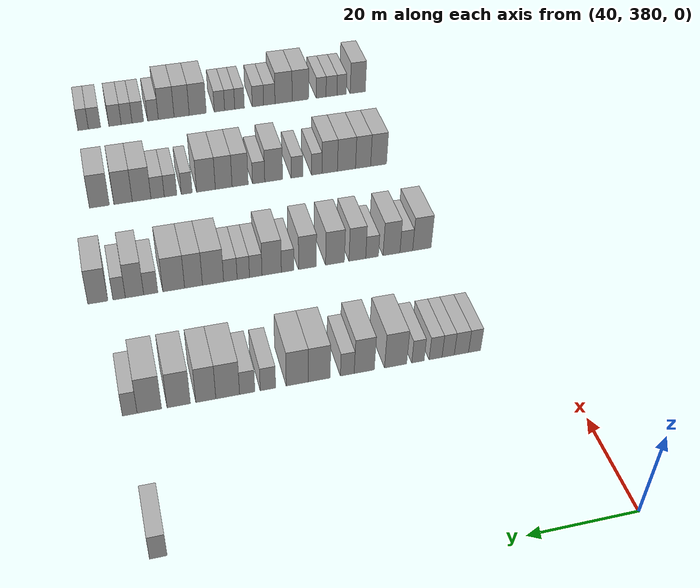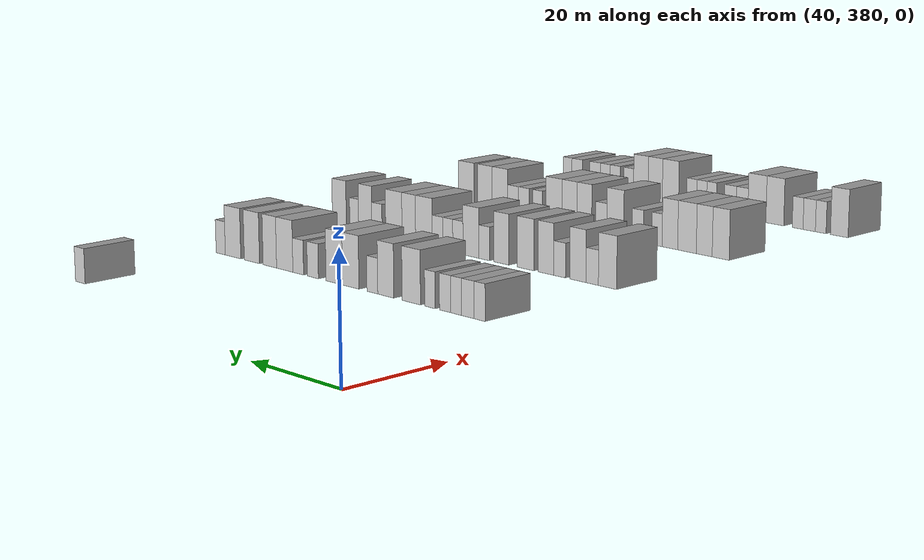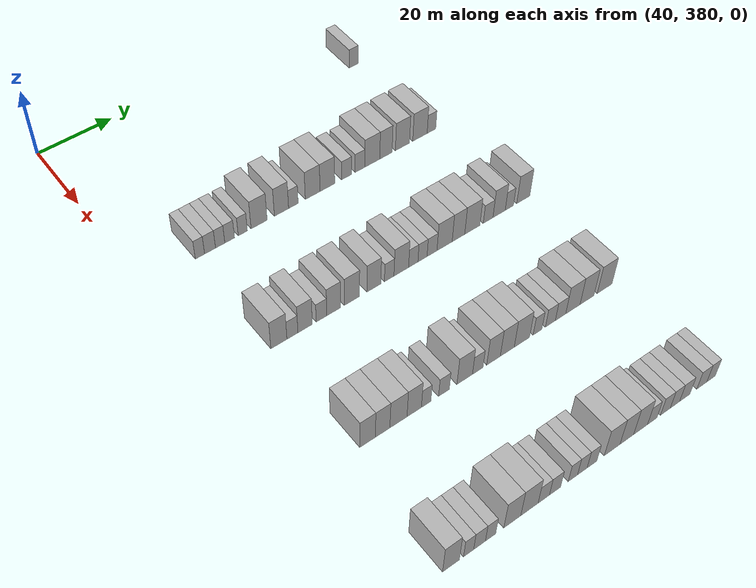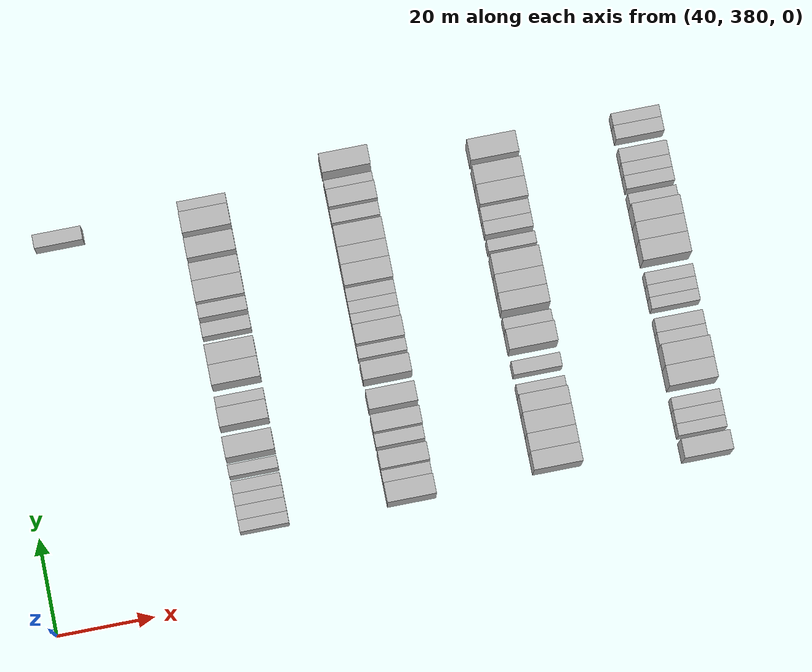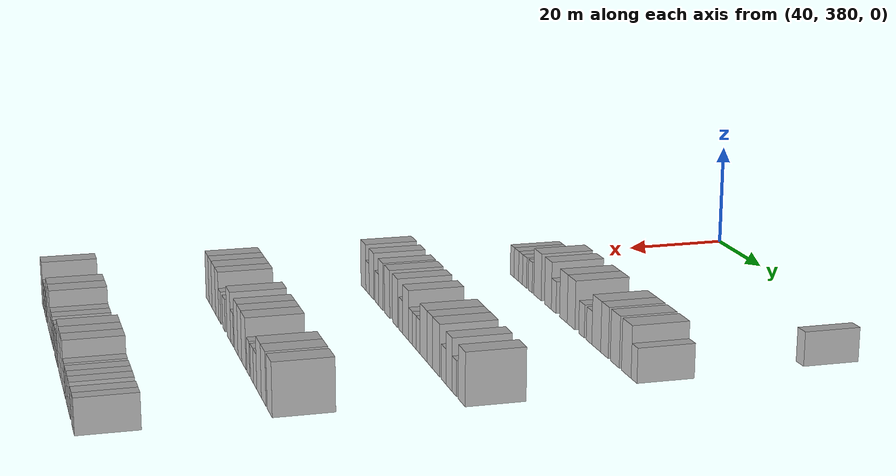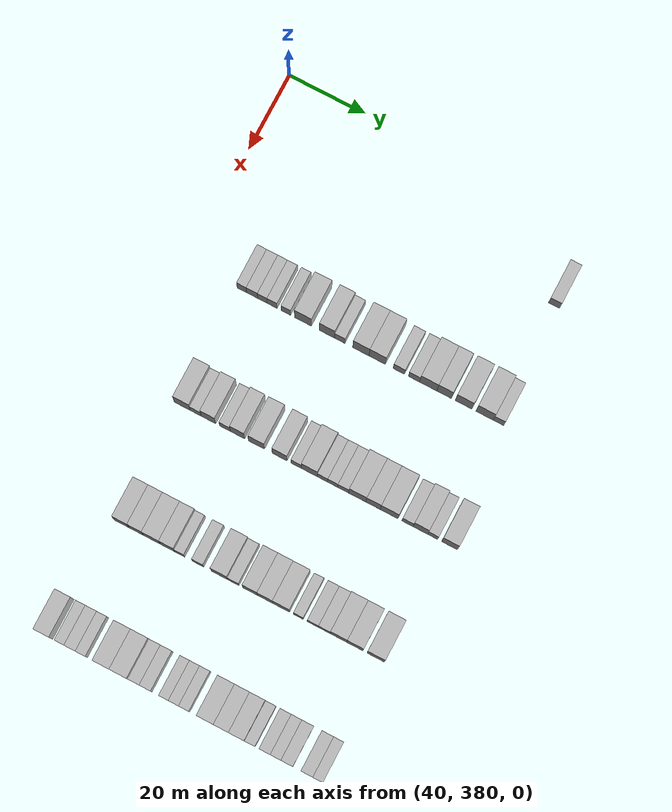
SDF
<sdf version="1.6">
 <world name="default">
  <model name="building_459">
   <static>1</static>
   <pose>55.0000 458.8344 0 0.000000 0.000000 0.000000</pose>
   <link name="link">
    <pose>0 0 3.00 0 0 0</pose>
    <collision name="collision"><geometry><box><size>10.0000 2.8377 6.0000</size></box></geometry></collision>
    <visual name="visual">
     <cast_shadows>0</cast_shadows>
     <geometry><box><size>10.0000 2.8377 6.0000</size></box></geometry>
     <material>
      <script>
       <uri>model://HANNAS_wall/materials/scripts</uri>
       <uri>model://HANNAS_wall/materials/textures</uri>
       <name>vrc/HANNAS_wall</name>
      </script>
     </material>
    </visual>
   </link>
  </model>
  <model name="building_679">
   <static>1</static>
   <pose>85.0000 394.0641 0 0.000000 0.000000 0.000000</pose>
   <link name="link">
    <pose>0 0 3.00 0 0 0</pose>
    <collision name="collision"><geometry><box><size>10.0000 2.4304 6.0000</size></box></geometry></collision>
    <visual name="visual">
     <cast_shadows>0</cast_shadows>
     <geometry><box><size>10.0000 2.4304 6.0000</size></box></geometry>
     <material>
      <script>
       <uri>model://HANNAS_wall/materials/scripts</uri>
       <uri>model://HANNAS_wall/materials/textures</uri>
       <name>vrc/HANNAS_wall</name>
      </script>
     </material>
    </visual>
   </link>
  </model>
  <model name="building_680">
   <static>1</static>
   <pose>85.0000 396.7114 0 0.000000 0.000000 0.000000</pose>
   <link name="link">
    <pose>0 0 3.00 0 0 0</pose>
    <collision name="collision"><geometry><box><size>10.0000 2.8643 6.0000</size></box></geometry></collision>
    <visual name="visual">
     <cast_shadows>0</cast_shadows>
     <geometry><box><size>10.0000 2.8643 6.0000</size></box></geometry>
     <material>
      <script>
       <uri>model://HANNAS_wall/materials/scripts</uri>
       <uri>model://HANNAS_wall/materials/textures</uri>
       <name>vrc/HANNAS_wall</name>
      </script>
     </material>
    </visual>
   </link>
  </model>
  <model name="building_681">
   <static>1</static>
   <pose>85.0000 399.3752 0 0.000000 0.000000 0.000000</pose>
   <link name="link">
    <pose>0 0 3.00 0 0 0</pose>
    <collision name="collision"><geometry><box><size>10.0000 2.4634 6.0000</size></box></geometry></collision>
    <visual name="visual">
     <cast_shadows>0</cast_shadows>
     <geometry><box><size>10.0000 2.4634 6.0000</size></box></geometry>
     <material>
      <script>
       <uri>model://HANNAS_wall/materials/scripts</uri>
       <uri>model://HANNAS_wall/materials/textures</uri>
       <name>vrc/HANNAS_wall</name>
      </script>
     </material>
    </visual>
   </link>
  </model>
  <model name="building_682">
   <static>1</static>
   <pose>85.0000 401.8960 0 0.000000 0.000000 0.000000</pose>
   <link name="link">
    <pose>0 0 3.00 0 0 0</pose>
    <collision name="collision"><geometry><box><size>10.0000 2.5781 6.0000</size></box></geometry></collision>
    <visual name="visual">
     <cast_shadows>0</cast_shadows>
     <geometry><box><size>10.0000 2.5781 6.0000</size></box></geometry>
     <material>
      <script>
       <uri>model://HANNAS_wall/materials/scripts</uri>
       <uri>model://HANNAS_wall/materials/textures</uri>
       <name>vrc/HANNAS_wall</name>
      </script>
     </material>
    </visual>
   </link>
  </model>
  <model name="building_683">
   <static>1</static>
   <pose>85.0000 405.4128 0 0.000000 0.000000 0.000000</pose>
   <link name="link">
    <pose>0 0 3.00 0 0 0</pose>
    <collision name="collision"><geometry><box><size>10.0000 2.4557 6.0000</size></box></geometry></collision>
    <visual name="visual">
     <cast_shadows>0</cast_shadows>
     <geometry><box><size>10.0000 2.4557 6.0000</size></box></geometry>
     <material>
      <script>
       <uri>model://HANNAS_wall/materials/scripts</uri>
       <uri>model://HANNAS_wall/materials/textures</uri>
       <name>vrc/HANNAS_wall</name>
      </script>
     </material>
    </visual>
   </link>
  </model>
  <model name="building_684">
   <static>1</static>
   <pose>85.0000 409.8267 0 0.000000 0.000000 0.000000</pose>
   <link name="link">
    <pose>0 0 4.50 0 0 0</pose>
    <collision name="collision"><geometry><box><size>10.0000 4.3721 9.0000</size></box></geometry></collision>
    <visual name="visual">
     <cast_shadows>0</cast_shadows>
     <geometry><box><size>10.0000 4.3721 9.0000</size></box></geometry>
     <material>
      <script>
       <uri>model://HANNAS_wall/materials/scripts</uri>
       <uri>model://HANNAS_wall/materials/textures</uri>
       <name>vrc/HANNAS_wall</name>
      </script>
     </material>
    </visual>
   </link>
  </model>
  <model name="building_685">
   <static>1</static>
   <pose>85.0000 415.9788 0 0.000000 0.000000 0.000000</pose>
   <link name="link">
    <pose>0 0 4.50 0 0 0</pose>
    <collision name="collision"><geometry><box><size>10.0000 3.9320 9.0000</size></box></geometry></collision>
    <visual name="visual">
     <cast_shadows>0</cast_shadows>
     <geometry><box><size>10.0000 3.9320 9.0000</size></box></geometry>
     <material>
      <script>
       <uri>model://HANNAS_wall/materials/scripts</uri>
       <uri>model://HANNAS_wall/materials/textures</uri>
       <name>vrc/HANNAS_wall</name>
      </script>
     </material>
    </visual>
   </link>
  </model>
  <model name="building_686">
   <static>1</static>
   <pose>85.0000 419.2805 0 0.000000 0.000000 0.000000</pose>
   <link name="link">
    <pose>0 0 3.00 0 0 0</pose>
    <collision name="collision"><geometry><box><size>10.0000 2.6714 6.0000</size></box></geometry></collision>
    <visual name="visual">
     <cast_shadows>0</cast_shadows>
     <geometry><box><size>10.0000 2.6714 6.0000</size></box></geometry>
     <material>
      <script>
       <uri>model://HANNAS_wall/materials/scripts</uri>
       <uri>model://HANNAS_wall/materials/textures</uri>
       <name>vrc/HANNAS_wall</name>
      </script>
     </material>
    </visual>
   </link>
  </model>
  <model name="building_687">
   <static>1</static>
   <pose>85.0000 424.7098 0 0.000000 0.000000 0.000000</pose>
   <link name="link">
    <pose>0 0 4.50 0 0 0</pose>
    <collision name="collision"><geometry><box><size>10.0000 4.1873 9.0000</size></box></geometry></collision>
    <visual name="visual">
     <cast_shadows>0</cast_shadows>
     <geometry><box><size>10.0000 4.1873 9.0000</size></box></geometry>
     <material>
      <script>
       <uri>model://HANNAS_wall/materials/scripts</uri>
       <uri>model://HANNAS_wall/materials/textures</uri>
       <name>vrc/HANNAS_wall</name>
      </script>
     </material>
    </visual>
   </link>
  </model>
  <model name="building_688">
   <static>1</static>
   <pose>85.0000 428.9042 0 0.000000 0.000000 0.000000</pose>
   <link name="link">
    <pose>0 0 4.50 0 0 0</pose>
    <collision name="collision"><geometry><box><size>10.0000 4.2014 9.0000</size></box></geometry></collision>
    <visual name="visual">
     <cast_shadows>0</cast_shadows>
     <geometry><box><size>10.0000 4.2014 9.0000</size></box></geometry>
     <material>
      <script>
       <uri>model://HANNAS_wall/materials/scripts</uri>
       <uri>model://HANNAS_wall/materials/textures</uri>
       <name>vrc/HANNAS_wall</name>
      </script>
     </material>
    </visual>
   </link>
  </model>
  <model name="building_689">
   <static>1</static>
   <pose>85.0000 434.4613 0 0.000000 0.000000 0.000000</pose>
   <link name="link">
    <pose>0 0 3.00 0 0 0</pose>
    <collision name="collision"><geometry><box><size>10.0000 2.9129 6.0000</size></box></geometry></collision>
    <visual name="visual">
     <cast_shadows>0</cast_shadows>
     <geometry><box><size>10.0000 2.9129 6.0000</size></box></geometry>
     <material>
      <script>
       <uri>model://HANNAS_wall/materials/scripts</uri>
       <uri>model://HANNAS_wall/materials/textures</uri>
       <name>vrc/HANNAS_wall</name>
      </script>
     </material>
    </visual>
   </link>
  </model>
  <model name="building_690">
   <static>1</static>
   <pose>85.0000 438.3498 0 0.000000 0.000000 0.000000</pose>
   <link name="link">
    <pose>0 0 3.00 0 0 0</pose>
    <collision name="collision"><geometry><box><size>10.0000 2.8642 6.0000</size></box></geometry></collision>
    <visual name="visual">
     <cast_shadows>0</cast_shadows>
     <geometry><box><size>10.0000 2.8642 6.0000</size></box></geometry>
     <material>
      <script>
       <uri>model://HANNAS_wall/materials/scripts</uri>
       <uri>model://HANNAS_wall/materials/textures</uri>
       <name>vrc/HANNAS_wall</name>
      </script>
     </material>
    </visual>
   </link>
  </model>
  <model name="building_691">
   <static>1</static>
   <pose>85.0000 441.9945 0 0.000000 0.000000 0.000000</pose>
   <link name="link">
    <pose>0 0 4.50 0 0 0</pose>
    <collision name="collision"><geometry><box><size>10.0000 4.4252 9.0000</size></box></geometry></collision>
    <visual name="visual">
     <cast_shadows>0</cast_shadows>
     <geometry><box><size>10.0000 4.4252 9.0000</size></box></geometry>
     <material>
      <script>
       <uri>model://HANNAS_wall/materials/scripts</uri>
       <uri>model://HANNAS_wall/materials/textures</uri>
       <name>vrc/HANNAS_wall</name>
      </script>
     </material>
    </visual>
   </link>
  </model>
  <model name="building_692">
   <static>1</static>
   <pose>85.0000 446.0563 0 0.000000 0.000000 0.000000</pose>
   <link name="link">
    <pose>0 0 4.50 0 0 0</pose>
    <collision name="collision"><geometry><box><size>10.0000 3.6984 9.0000</size></box></geometry></collision>
    <visual name="visual">
     <cast_shadows>0</cast_shadows>
     <geometry><box><size>10.0000 3.6984 9.0000</size></box></geometry>
     <material>
      <script>
       <uri>model://HANNAS_wall/materials/scripts</uri>
       <uri>model://HANNAS_wall/materials/textures</uri>
       <name>vrc/HANNAS_wall</name>
      </script>
     </material>
    </visual>
   </link>
  </model>
  <model name="building_693">
   <static>1</static>
   <pose>85.0000 451.0415 0 0.000000 0.000000 0.000000</pose>
   <link name="link">
    <pose>0 0 4.50 0 0 0</pose>
    <collision name="collision"><geometry><box><size>10.0000 4.2721 9.0000</size></box></geometry></collision>
    <visual name="visual">
     <cast_shadows>0</cast_shadows>
     <geometry><box><size>10.0000 4.2721 9.0000</size></box></geometry>
     <material>
      <script>
       <uri>model://HANNAS_wall/materials/scripts</uri>
       <uri>model://HANNAS_wall/materials/textures</uri>
       <name>vrc/HANNAS_wall</name>
      </script>
     </material>
    </visual>
   </link>
  </model>
  <model name="building_694">
   <static>1</static>
   <pose>85.0000 456.3931 0 0.000000 0.000000 0.000000</pose>
   <link name="link">
    <pose>0 0 4.50 0 0 0</pose>
    <collision name="collision"><geometry><box><size>10.0000 4.4310 9.0000</size></box></geometry></collision>
    <visual name="visual">
     <cast_shadows>0</cast_shadows>
     <geometry><box><size>10.0000 4.4310 9.0000</size></box></geometry>
     <material>
      <script>
       <uri>model://HANNAS_wall/materials/scripts</uri>
       <uri>model://HANNAS_wall/materials/textures</uri>
       <name>vrc/HANNAS_wall</name>
      </script>
     </material>
    </visual>
   </link>
  </model>
  <model name="building_695">
   <static>1</static>
   <pose>85.0000 459.9425 0 0.000000 0.000000 0.000000</pose>
   <link name="link">
    <pose>0 0 3.00 0 0 0</pose>
    <collision name="collision"><geometry><box><size>10.0000 2.6679 6.0000</size></box></geometry></collision>
    <visual name="visual">
     <cast_shadows>0</cast_shadows>
     <geometry><box><size>10.0000 2.6679 6.0000</size></box></geometry>
     <material>
      <script>
       <uri>model://HANNAS_wall/materials/scripts</uri>
       <uri>model://HANNAS_wall/materials/textures</uri>
       <name>vrc/HANNAS_wall</name>
      </script>
     </material>
    </visual>
   </link>
  </model>
  <model name="building_903">
   <static>1</static>
   <pose>115.0000 394.6925 0 0.000000 0.000000 0.000000</pose>
   <link name="link">
    <pose>0 0 4.50 0 0 0</pose>
    <collision name="collision"><geometry><box><size>10.0000 4.0841 9.0000</size></box></geometry></collision>
    <visual name="visual">
     <cast_shadows>0</cast_shadows>
     <geometry><box><size>10.0000 4.0841 9.0000</size></box></geometry>
     <material>
      <script>
       <uri>model://HANNAS_wall/materials/scripts</uri>
       <uri>model://HANNAS_wall/materials/textures</uri>
       <name>vrc/HANNAS_wall</name>
      </script>
     </material>
    </visual>
   </link>
  </model>
  <model name="building_904">
   <static>1</static>
   <pose>115.0000 398.1429 0 0.000000 0.000000 0.000000</pose>
   <link name="link">
    <pose>0 0 3.00 0 0 0</pose>
    <collision name="collision"><geometry><box><size>10.0000 2.8167 6.0000</size></box></geometry></collision>
    <visual name="visual">
     <cast_shadows>0</cast_shadows>
     <geometry><box><size>10.0000 2.8167 6.0000</size></box></geometry>
     <material>
      <script>
       <uri>model://HANNAS_wall/materials/scripts</uri>
       <uri>model://HANNAS_wall/materials/textures</uri>
       <name>vrc/HANNAS_wall</name>
      </script>
     </material>
    </visual>
   </link>
  </model>
  <model name="building_905">
   <static>1</static>
   <pose>115.0000 401.4115 0 0.000000 0.000000 0.000000</pose>
   <link name="link">
    <pose>0 0 4.50 0 0 0</pose>
    <collision name="collision"><geometry><box><size>10.0000 3.7205 9.0000</size></box></geometry></collision>
    <visual name="visual">
     <cast_shadows>0</cast_shadows>
     <geometry><box><size>10.0000 3.7205 9.0000</size></box></geometry>
     <material>
      <script>
       <uri>model://HANNAS_wall/materials/scripts</uri>
       <uri>model://HANNAS_wall/materials/textures</uri>
       <name>vrc/HANNAS_wall</name>
      </script>
     </material>
    </visual>
   </link>
  </model>
  <model name="building_906">
   <static>1</static>
   <pose>115.0000 405.6638 0 0.000000 0.000000 0.000000</pose>
   <link name="link">
    <pose>0 0 3.00 0 0 0</pose>
    <collision name="collision"><geometry><box><size>10.0000 2.7841 6.0000</size></box></geometry></collision>
    <visual name="visual">
     <cast_shadows>0</cast_shadows>
     <geometry><box><size>10.0000 2.7841 6.0000</size></box></geometry>
     <material>
      <script>
       <uri>model://HANNAS_wall/materials/scripts</uri>
       <uri>model://HANNAS_wall/materials/textures</uri>
       <name>vrc/HANNAS_wall</name>
      </script>
     </material>
    </visual>
   </link>
  </model>
  <model name="building_907">
   <static>1</static>
   <pose>115.0000 408.8747 0 0.000000 0.000000 0.000000</pose>
   <link name="link">
    <pose>0 0 4.50 0 0 0</pose>
    <collision name="collision"><geometry><box><size>10.0000 3.6377 9.0000</size></box></geometry></collision>
    <visual name="visual">
     <cast_shadows>0</cast_shadows>
     <geometry><box><size>10.0000 3.6377 9.0000</size></box></geometry>
     <material>
      <script>
       <uri>model://HANNAS_wall/materials/scripts</uri>
       <uri>model://HANNAS_wall/materials/textures</uri>
       <name>vrc/HANNAS_wall</name>
      </script>
     </material>
    </visual>
   </link>
  </model>
  <model name="building_908">
   <static>1</static>
   <pose>115.0000 413.7236 0 0.000000 0.000000 0.000000</pose>
   <link name="link">
    <pose>0 0 4.50 0 0 0</pose>
    <collision name="collision"><geometry><box><size>10.0000 4.0600 9.0000</size></box></geometry></collision>
    <visual name="visual">
     <cast_shadows>0</cast_shadows>
     <geometry><box><size>10.0000 4.0600 9.0000</size></box></geometry>
     <material>
      <script>
       <uri>model://HANNAS_wall/materials/scripts</uri>
       <uri>model://HANNAS_wall/materials/textures</uri>
       <name>vrc/HANNAS_wall</name>
      </script>
     </material>
    </visual>
   </link>
  </model>
  <model name="building_909">
   <static>1</static>
   <pose>115.0000 419.6513 0 0.000000 0.000000 0.000000</pose>
   <link name="link">
    <pose>0 0 4.50 0 0 0</pose>
    <collision name="collision"><geometry><box><size>10.0000 3.7955 9.0000</size></box></geometry></collision>
    <visual name="visual">
     <cast_shadows>0</cast_shadows>
     <geometry><box><size>10.0000 3.7955 9.0000</size></box></geometry>
     <material>
      <script>
       <uri>model://HANNAS_wall/materials/scripts</uri>
       <uri>model://HANNAS_wall/materials/textures</uri>
       <name>vrc/HANNAS_wall</name>
      </script>
     </material>
    </visual>
   </link>
  </model>
  <model name="building_910">
   <static>1</static>
   <pose>115.0000 423.8630 0 0.000000 0.000000 0.000000</pose>
   <link name="link">
    <pose>0 0 3.00 0 0 0</pose>
    <collision name="collision"><geometry><box><size>10.0000 2.6278 6.0000</size></box></geometry></collision>
    <visual name="visual">
     <cast_shadows>0</cast_shadows>
     <geometry><box><size>10.0000 2.6278 6.0000</size></box></geometry>
     <material>
      <script>
       <uri>model://HANNAS_wall/materials/scripts</uri>
       <uri>model://HANNAS_wall/materials/textures</uri>
       <name>vrc/HANNAS_wall</name>
      </script>
     </material>
    </visual>
   </link>
  </model>
  <model name="building_911">
   <static>1</static>
   <pose>115.0000 427.2157 0 0.000000 0.000000 0.000000</pose>
   <link name="link">
    <pose>0 0 4.50 0 0 0</pose>
    <collision name="collision"><geometry><box><size>10.0000 4.0777 9.0000</size></box></geometry></collision>
    <visual name="visual">
     <cast_shadows>0</cast_shadows>
     <geometry><box><size>10.0000 4.0777 9.0000</size></box></geometry>
     <material>
      <script>
       <uri>model://HANNAS_wall/materials/scripts</uri>
       <uri>model://HANNAS_wall/materials/textures</uri>
       <name>vrc/HANNAS_wall</name>
      </script>
     </material>
    </visual>
   </link>
  </model>
  <model name="building_912">
   <static>1</static>
   <pose>115.0000 430.5690 0 0.000000 0.000000 0.000000</pose>
   <link name="link">
    <pose>0 0 3.00 0 0 0</pose>
    <collision name="collision"><geometry><box><size>10.0000 2.6288 6.0000</size></box></geometry></collision>
    <visual name="visual">
     <cast_shadows>0</cast_shadows>
     <geometry><box><size>10.0000 2.6288 6.0000</size></box></geometry>
     <material>
      <script>
       <uri>model://HANNAS_wall/materials/scripts</uri>
       <uri>model://HANNAS_wall/materials/textures</uri>
       <name>vrc/HANNAS_wall</name>
      </script>
     </material>
    </visual>
   </link>
  </model>
  <model name="building_913">
   <static>1</static>
   <pose>115.0000 433.1755 0 0.000000 0.000000 0.000000</pose>
   <link name="link">
    <pose>0 0 3.00 0 0 0</pose>
    <collision name="collision"><geometry><box><size>10.0000 2.5843 6.0000</size></box></geometry></collision>
    <visual name="visual">
     <cast_shadows>0</cast_shadows>
     <geometry><box><size>10.0000 2.5843 6.0000</size></box></geometry>
     <material>
      <script>
       <uri>model://HANNAS_wall/materials/scripts</uri>
       <uri>model://HANNAS_wall/materials/textures</uri>
       <name>vrc/HANNAS_wall</name>
      </script>
     </material>
    </visual>
   </link>
  </model>
  <model name="building_914">
   <static>1</static>
   <pose>115.0000 435.8735 0 0.000000 0.000000 0.000000</pose>
   <link name="link">
    <pose>0 0 3.00 0 0 0</pose>
    <collision name="collision"><geometry><box><size>10.0000 2.8116 6.0000</size></box></geometry></collision>
    <visual name="visual">
     <cast_shadows>0</cast_shadows>
     <geometry><box><size>10.0000 2.8116 6.0000</size></box></geometry>
     <material>
      <script>
       <uri>model://HANNAS_wall/materials/scripts</uri>
       <uri>model://HANNAS_wall/materials/textures</uri>
       <name>vrc/HANNAS_wall</name>
      </script>
     </material>
    </visual>
   </link>
  </model>
  <model name="building_915">
   <static>1</static>
   <pose>115.0000 439.4709 0 0.000000 0.000000 0.000000</pose>
   <link name="link">
    <pose>0 0 4.50 0 0 0</pose>
    <collision name="collision"><geometry><box><size>10.0000 4.3833 9.0000</size></box></geometry></collision>
    <visual name="visual">
     <cast_shadows>0</cast_shadows>
     <geometry><box><size>10.0000 4.3833 9.0000</size></box></geometry>
     <material>
      <script>
       <uri>model://HANNAS_wall/materials/scripts</uri>
       <uri>model://HANNAS_wall/materials/textures</uri>
       <name>vrc/HANNAS_wall</name>
      </script>
     </material>
    </visual>
   </link>
  </model>
  <model name="building_916">
   <static>1</static>
   <pose>115.0000 443.4964 0 0.000000 0.000000 0.000000</pose>
   <link name="link">
    <pose>0 0 4.50 0 0 0</pose>
    <collision name="collision"><geometry><box><size>10.0000 3.6677 9.0000</size></box></geometry></collision>
    <visual name="visual">
     <cast_shadows>0</cast_shadows>
     <geometry><box><size>10.0000 3.6677 9.0000</size></box></geometry>
     <material>
      <script>
       <uri>model://HANNAS_wall/materials/scripts</uri>
       <uri>model://HANNAS_wall/materials/textures</uri>
       <name>vrc/HANNAS_wall</name>
      </script>
     </material>
    </visual>
   </link>
  </model>
  <model name="building_917">
   <static>1</static>
   <pose>115.0000 447.5612 0 0.000000 0.000000 0.000000</pose>
   <link name="link">
    <pose>0 0 4.50 0 0 0</pose>
    <collision name="collision"><geometry><box><size>10.0000 4.4619 9.0000</size></box></geometry></collision>
    <visual name="visual">
     <cast_shadows>0</cast_shadows>
     <geometry><box><size>10.0000 4.4619 9.0000</size></box></geometry>
     <material>
      <script>
       <uri>model://HANNAS_wall/materials/scripts</uri>
       <uri>model://HANNAS_wall/materials/textures</uri>
       <name>vrc/HANNAS_wall</name>
      </script>
     </material>
    </visual>
   </link>
  </model>
  <model name="building_918">
   <static>1</static>
   <pose>115.0000 452.2348 0 0.000000 0.000000 0.000000</pose>
   <link name="link">
    <pose>0 0 3.00 0 0 0</pose>
    <collision name="collision"><geometry><box><size>10.0000 2.8852 6.0000</size></box></geometry></collision>
    <visual name="visual">
     <cast_shadows>0</cast_shadows>
     <geometry><box><size>10.0000 2.8852 6.0000</size></box></geometry>
     <material>
      <script>
       <uri>model://HANNAS_wall/materials/scripts</uri>
       <uri>model://HANNAS_wall/materials/textures</uri>
       <name>vrc/HANNAS_wall</name>
      </script>
     </material>
    </visual>
   </link>
  </model>
  <model name="building_919">
   <static>1</static>
   <pose>115.0000 455.5239 0 0.000000 0.000000 0.000000</pose>
   <link name="link">
    <pose>0 0 4.50 0 0 0</pose>
    <collision name="collision"><geometry><box><size>10.0000 3.6930 9.0000</size></box></geometry></collision>
    <visual name="visual">
     <cast_shadows>0</cast_shadows>
     <geometry><box><size>10.0000 3.6930 9.0000</size></box></geometry>
     <material>
      <script>
       <uri>model://HANNAS_wall/materials/scripts</uri>
       <uri>model://HANNAS_wall/materials/textures</uri>
       <name>vrc/HANNAS_wall</name>
      </script>
     </material>
    </visual>
   </link>
  </model>
  <model name="building_920">
   <static>1</static>
   <pose>115.0000 458.6252 0 0.000000 0.000000 0.000000</pose>
   <link name="link">
    <pose>0 0 3.00 0 0 0</pose>
    <collision name="collision"><geometry><box><size>10.0000 2.5096 6.0000</size></box></geometry></collision>
    <visual name="visual">
     <cast_shadows>0</cast_shadows>
     <geometry><box><size>10.0000 2.5096 6.0000</size></box></geometry>
     <material>
      <script>
       <uri>model://HANNAS_wall/materials/scripts</uri>
       <uri>model://HANNAS_wall/materials/textures</uri>
       <name>vrc/HANNAS_wall</name>
      </script>
     </material>
    </visual>
   </link>
  </model>
  <model name="building_921">
   <static>1</static>
   <pose>115.0000 462.8836 0 0.000000 0.000000 0.000000</pose>
   <link name="link">
    <pose>0 0 4.50 0 0 0</pose>
    <collision name="collision"><geometry><box><size>10.0000 4.0072 9.0000</size></box></geometry></collision>
    <visual name="visual">
     <cast_shadows>0</cast_shadows>
     <geometry><box><size>10.0000 4.0072 9.0000</size></box></geometry>
     <material>
      <script>
       <uri>model://HANNAS_wall/materials/scripts</uri>
       <uri>model://HANNAS_wall/materials/textures</uri>
       <name>vrc/HANNAS_wall</name>
      </script>
     </material>
    </visual>
   </link>
  </model>
  <model name="building_1141">
   <static>1</static>
   <pose>145.0000 395.2966 0 0.000000 0.000000 0.000000</pose>
   <link name="link">
    <pose>0 0 4.50 0 0 0</pose>
    <collision name="collision"><geometry><box><size>10.0000 3.8424 9.0000</size></box></geometry></collision>
    <visual name="visual">
     <cast_shadows>0</cast_shadows>
     <geometry><box><size>10.0000 3.8424 9.0000</size></box></geometry>
     <material>
      <script>
       <uri>model://HANNAS_wall/materials/scripts</uri>
       <uri>model://HANNAS_wall/materials/textures</uri>
       <name>vrc/HANNAS_wall</name>
      </script>
     </material>
    </visual>
   </link>
  </model>
  <model name="building_1142">
   <static>1</static>
   <pose>145.0000 399.0387 0 0.000000 0.000000 0.000000</pose>
   <link name="link">
    <pose>0 0 4.50 0 0 0</pose>
    <collision name="collision"><geometry><box><size>10.0000 3.6418 9.0000</size></box></geometry></collision>
    <visual name="visual">
     <cast_shadows>0</cast_shadows>
     <geometry><box><size>10.0000 3.6418 9.0000</size></box></geometry>
     <material>
      <script>
       <uri>model://HANNAS_wall/materials/scripts</uri>
       <uri>model://HANNAS_wall/materials/textures</uri>
       <name>vrc/HANNAS_wall</name>
      </script>
     </material>
    </visual>
   </link>
  </model>
  <model name="building_1143">
   <static>1</static>
   <pose>145.0000 403.0276 0 0.000000 0.000000 0.000000</pose>
   <link name="link">
    <pose>0 0 4.50 0 0 0</pose>
    <collision name="collision"><geometry><box><size>10.0000 4.3361 9.0000</size></box></geometry></collision>
    <visual name="visual">
     <cast_shadows>0</cast_shadows>
     <geometry><box><size>10.0000 4.3361 9.0000</size></box></geometry>
     <material>
      <script>
       <uri>model://HANNAS_wall/materials/scripts</uri>
       <uri>model://HANNAS_wall/materials/textures</uri>
       <name>vrc/HANNAS_wall</name>
      </script>
     </material>
    </visual>
   </link>
  </model>
  <model name="building_1144">
   <static>1</static>
   <pose>145.0000 407.0370 0 0.000000 0.000000 0.000000</pose>
   <link name="link">
    <pose>0 0 4.50 0 0 0</pose>
    <collision name="collision"><geometry><box><size>10.0000 3.6827 9.0000</size></box></geometry></collision>
    <visual name="visual">
     <cast_shadows>0</cast_shadows>
     <geometry><box><size>10.0000 3.6827 9.0000</size></box></geometry>
     <material>
      <script>
       <uri>model://HANNAS_wall/materials/scripts</uri>
       <uri>model://HANNAS_wall/materials/textures</uri>
       <name>vrc/HANNAS_wall</name>
      </script>
     </material>
    </visual>
   </link>
  </model>
  <model name="building_1145">
   <static>1</static>
   <pose>145.0000 410.1045 0 0.000000 0.000000 0.000000</pose>
   <link name="link">
    <pose>0 0 3.00 0 0 0</pose>
    <collision name="collision"><geometry><box><size>10.0000 2.4523 6.0000</size></box></geometry></collision>
    <visual name="visual">
     <cast_shadows>0</cast_shadows>
     <geometry><box><size>10.0000 2.4523 6.0000</size></box></geometry>
     <material>
      <script>
       <uri>model://HANNAS_wall/materials/scripts</uri>
       <uri>model://HANNAS_wall/materials/textures</uri>
       <name>vrc/HANNAS_wall</name>
      </script>
     </material>
    </visual>
   </link>
  </model>
  <model name="building_1146">
   <static>1</static>
   <pose>145.0000 414.7430 0 0.000000 0.000000 0.000000</pose>
   <link name="link">
    <pose>0 0 3.00 0 0 0</pose>
    <collision name="collision"><geometry><box><size>10.0000 2.8245 6.0000</size></box></geometry></collision>
    <visual name="visual">
     <cast_shadows>0</cast_shadows>
     <geometry><box><size>10.0000 2.8245 6.0000</size></box></geometry>
     <material>
      <script>
       <uri>model://HANNAS_wall/materials/scripts</uri>
       <uri>model://HANNAS_wall/materials/textures</uri>
       <name>vrc/HANNAS_wall</name>
      </script>
     </material>
    </visual>
   </link>
  </model>
  <model name="building_1147">
   <static>1</static>
   <pose>145.0000 420.2308 0 0.000000 0.000000 0.000000</pose>
   <link name="link">
    <pose>0 0 4.50 0 0 0</pose>
    <collision name="collision"><geometry><box><size>10.0000 4.1511 9.0000</size></box></geometry></collision>
    <visual name="visual">
     <cast_shadows>0</cast_shadows>
     <geometry><box><size>10.0000 4.1511 9.0000</size></box></geometry>
     <material>
      <script>
       <uri>model://HANNAS_wall/materials/scripts</uri>
       <uri>model://HANNAS_wall/materials/textures</uri>
       <name>vrc/HANNAS_wall</name>
      </script>
     </material>
    </visual>
   </link>
  </model>
  <model name="building_1148">
   <static>1</static>
   <pose>145.0000 423.7265 0 0.000000 0.000000 0.000000</pose>
   <link name="link">
    <pose>0 0 3.00 0 0 0</pose>
    <collision name="collision"><geometry><box><size>10.0000 2.8404 6.0000</size></box></geometry></collision>
    <visual name="visual">
     <cast_shadows>0</cast_shadows>
     <geometry><box><size>10.0000 2.8404 6.0000</size></box></geometry>
     <material>
      <script>
       <uri>model://HANNAS_wall/materials/scripts</uri>
       <uri>model://HANNAS_wall/materials/textures</uri>
       <name>vrc/HANNAS_wall</name>
      </script>
     </material>
    </visual>
   </link>
  </model>
  <model name="building_1149">
   <static>1</static>
   <pose>145.0000 428.0050 0 0.000000 0.000000 0.000000</pose>
   <link name="link">
    <pose>0 0 4.50 0 0 0</pose>
    <collision name="collision"><geometry><box><size>10.0000 3.7166 9.0000</size></box></geometry></collision>
    <visual name="visual">
     <cast_shadows>0</cast_shadows>
     <geometry><box><size>10.0000 3.7166 9.0000</size></box></geometry>
     <material>
      <script>
       <uri>model://HANNAS_wall/materials/scripts</uri>
       <uri>model://HANNAS_wall/materials/textures</uri>
       <name>vrc/HANNAS_wall</name>
      </script>
     </material>
    </visual>
   </link>
  </model>
  <model name="building_1150">
   <static>1</static>
   <pose>145.0000 431.7863 0 0.000000 0.000000 0.000000</pose>
   <link name="link">
    <pose>0 0 4.50 0 0 0</pose>
    <collision name="collision"><geometry><box><size>10.0000 3.8460 9.0000</size></box></geometry></collision>
    <visual name="visual">
     <cast_shadows>0</cast_shadows>
     <geometry><box><size>10.0000 3.8460 9.0000</size></box></geometry>
     <material>
      <script>
       <uri>model://HANNAS_wall/materials/scripts</uri>
       <uri>model://HANNAS_wall/materials/textures</uri>
       <name>vrc/HANNAS_wall</name>
      </script>
     </material>
    </visual>
   </link>
  </model>
  <model name="building_1151">
   <static>1</static>
   <pose>145.0000 435.8463 0 0.000000 0.000000 0.000000</pose>
   <link name="link">
    <pose>0 0 4.50 0 0 0</pose>
    <collision name="collision"><geometry><box><size>10.0000 4.2741 9.0000</size></box></geometry></collision>
    <visual name="visual">
     <cast_shadows>0</cast_shadows>
     <geometry><box><size>10.0000 4.2741 9.0000</size></box></geometry>
     <material>
      <script>
       <uri>model://HANNAS_wall/materials/scripts</uri>
       <uri>model://HANNAS_wall/materials/textures</uri>
       <name>vrc/HANNAS_wall</name>
      </script>
     </material>
    </visual>
   </link>
  </model>
  <model name="building_1152">
   <static>1</static>
   <pose>145.0000 440.2235 0 0.000000 0.000000 0.000000</pose>
   <link name="link">
    <pose>0 0 3.00 0 0 0</pose>
    <collision name="collision"><geometry><box><size>10.0000 2.4802 6.0000</size></box></geometry></collision>
    <visual name="visual">
     <cast_shadows>0</cast_shadows>
     <geometry><box><size>10.0000 2.4802 6.0000</size></box></geometry>
     <material>
      <script>
       <uri>model://HANNAS_wall/materials/scripts</uri>
       <uri>model://HANNAS_wall/materials/textures</uri>
       <name>vrc/HANNAS_wall</name>
      </script>
     </material>
    </visual>
   </link>
  </model>
  <model name="building_1153">
   <static>1</static>
   <pose>145.0000 443.8809 0 0.000000 0.000000 0.000000</pose>
   <link name="link">
    <pose>0 0 3.00 0 0 0</pose>
    <collision name="collision"><geometry><box><size>10.0000 2.8347 6.0000</size></box></geometry></collision>
    <visual name="visual">
     <cast_shadows>0</cast_shadows>
     <geometry><box><size>10.0000 2.8347 6.0000</size></box></geometry>
     <material>
      <script>
       <uri>model://HANNAS_wall/materials/scripts</uri>
       <uri>model://HANNAS_wall/materials/textures</uri>
       <name>vrc/HANNAS_wall</name>
      </script>
     </material>
    </visual>
   </link>
  </model>
  <model name="building_1154">
   <static>1</static>
   <pose>145.0000 446.7941 0 0.000000 0.000000 0.000000</pose>
   <link name="link">
    <pose>0 0 3.00 0 0 0</pose>
    <collision name="collision"><geometry><box><size>10.0000 2.9915 6.0000</size></box></geometry></collision>
    <visual name="visual">
     <cast_shadows>0</cast_shadows>
     <geometry><box><size>10.0000 2.9915 6.0000</size></box></geometry>
     <material>
      <script>
       <uri>model://HANNAS_wall/materials/scripts</uri>
       <uri>model://HANNAS_wall/materials/textures</uri>
       <name>vrc/HANNAS_wall</name>
      </script>
     </material>
    </visual>
   </link>
  </model>
  <model name="building_1155">
   <static>1</static>
   <pose>145.0000 450.3810 0 0.000000 0.000000 0.000000</pose>
   <link name="link">
    <pose>0 0 4.50 0 0 0</pose>
    <collision name="collision"><geometry><box><size>10.0000 4.1822 9.0000</size></box></geometry></collision>
    <visual name="visual">
     <cast_shadows>0</cast_shadows>
     <geometry><box><size>10.0000 4.1822 9.0000</size></box></geometry>
     <material>
      <script>
       <uri>model://HANNAS_wall/materials/scripts</uri>
       <uri>model://HANNAS_wall/materials/textures</uri>
       <name>vrc/HANNAS_wall</name>
      </script>
     </material>
    </visual>
   </link>
  </model>
  <model name="building_1156">
   <static>1</static>
   <pose>145.0000 454.5150 0 0.000000 0.000000 0.000000</pose>
   <link name="link">
    <pose>0 0 4.50 0 0 0</pose>
    <collision name="collision"><geometry><box><size>10.0000 4.0858 9.0000</size></box></geometry></collision>
    <visual name="visual">
     <cast_shadows>0</cast_shadows>
     <geometry><box><size>10.0000 4.0858 9.0000</size></box></geometry>
     <material>
      <script>
       <uri>model://HANNAS_wall/materials/scripts</uri>
       <uri>model://HANNAS_wall/materials/textures</uri>
       <name>vrc/HANNAS_wall</name>
      </script>
     </material>
    </visual>
   </link>
  </model>
  <model name="building_1157">
   <static>1</static>
   <pose>145.0000 459.7563 0 0.000000 0.000000 0.000000</pose>
   <link name="link">
    <pose>0 0 4.50 0 0 0</pose>
    <collision name="collision"><geometry><box><size>10.0000 4.3968 9.0000</size></box></geometry></collision>
    <visual name="visual">
     <cast_shadows>0</cast_shadows>
     <geometry><box><size>10.0000 4.3968 9.0000</size></box></geometry>
     <material>
      <script>
       <uri>model://HANNAS_wall/materials/scripts</uri>
       <uri>model://HANNAS_wall/materials/textures</uri>
       <name>vrc/HANNAS_wall</name>
      </script>
     </material>
    </visual>
   </link>
  </model>
  <model name="building_1372">
   <static>1</static>
   <pose>175.0000 391.8684 0 0.000000 0.000000 0.000000</pose>
   <link name="link">
    <pose>0 0 4.50 0 0 0</pose>
    <collision name="collision"><geometry><box><size>10.0000 3.9847 9.0000</size></box></geometry></collision>
    <visual name="visual">
     <cast_shadows>0</cast_shadows>
     <geometry><box><size>10.0000 3.9847 9.0000</size></box></geometry>
     <material>
      <script>
       <uri>model://HANNAS_wall/materials/scripts</uri>
       <uri>model://HANNAS_wall/materials/textures</uri>
       <name>vrc/HANNAS_wall</name>
      </script>
     </material>
    </visual>
   </link>
  </model>
  <model name="building_1373">
   <static>1</static>
   <pose>175.0000 396.0876 0 0.000000 0.000000 0.000000</pose>
   <link name="link">
    <pose>0 0 3.00 0 0 0</pose>
    <collision name="collision"><geometry><box><size>10.0000 2.4536 6.0000</size></box></geometry></collision>
    <visual name="visual">
     <cast_shadows>0</cast_shadows>
     <geometry><box><size>10.0000 2.4536 6.0000</size></box></geometry>
     <material>
      <script>
       <uri>model://HANNAS_wall/materials/scripts</uri>
       <uri>model://HANNAS_wall/materials/textures</uri>
       <name>vrc/HANNAS_wall</name>
      </script>
     </material>
    </visual>
   </link>
  </model>
  <model name="building_1374">
   <static>1</static>
   <pose>175.0000 398.7394 0 0.000000 0.000000 0.000000</pose>
   <link name="link">
    <pose>0 0 3.00 0 0 0</pose>
    <collision name="collision"><geometry><box><size>10.0000 2.8502 6.0000</size></box></geometry></collision>
    <visual name="visual">
     <cast_shadows>0</cast_shadows>
     <geometry><box><size>10.0000 2.8502 6.0000</size></box></geometry>
     <material>
      <script>
       <uri>model://HANNAS_wall/materials/scripts</uri>
       <uri>model://HANNAS_wall/materials/textures</uri>
       <name>vrc/HANNAS_wall</name>
      </script>
     </material>
    </visual>
   </link>
  </model>
  <model name="building_1375">
   <static>1</static>
   <pose>175.0000 401.4290 0 0.000000 0.000000 0.000000</pose>
   <link name="link">
    <pose>0 0 3.00 0 0 0</pose>
    <collision name="collision"><geometry><box><size>10.0000 2.5290 6.0000</size></box></geometry></collision>
    <visual name="visual">
     <cast_shadows>0</cast_shadows>
     <geometry><box><size>10.0000 2.5290 6.0000</size></box></geometry>
     <material>
      <script>
       <uri>model://HANNAS_wall/materials/scripts</uri>
       <uri>model://HANNAS_wall/materials/textures</uri>
       <name>vrc/HANNAS_wall</name>
      </script>
     </material>
    </visual>
   </link>
  </model>
  <model name="building_1376">
   <static>1</static>
   <pose>175.0000 406.8145 0 0.000000 0.000000 0.000000</pose>
   <link name="link">
    <pose>0 0 4.50 0 0 0</pose>
    <collision name="collision"><geometry><box><size>10.0000 4.2419 9.0000</size></box></geometry></collision>
    <visual name="visual">
     <cast_shadows>0</cast_shadows>
     <geometry><box><size>10.0000 4.2419 9.0000</size></box></geometry>
     <material>
      <script>
       <uri>model://HANNAS_wall/materials/scripts</uri>
       <uri>model://HANNAS_wall/materials/textures</uri>
       <name>vrc/HANNAS_wall</name>
      </script>
     </material>
    </visual>
   </link>
  </model>
  <model name="building_1377">
   <static>1</static>
   <pose>175.0000 411.1268 0 0.000000 0.000000 0.000000</pose>
   <link name="link">
    <pose>0 0 4.50 0 0 0</pose>
    <collision name="collision"><geometry><box><size>10.0000 4.3828 9.0000</size></box></geometry></collision>
    <visual name="visual">
     <cast_shadows>0</cast_shadows>
     <geometry><box><size>10.0000 4.3828 9.0000</size></box></geometry>
     <material>
      <script>
       <uri>model://HANNAS_wall/materials/scripts</uri>
       <uri>model://HANNAS_wall/materials/textures</uri>
       <name>vrc/HANNAS_wall</name>
      </script>
     </material>
    </visual>
   </link>
  </model>
  <model name="building_1378">
   <static>1</static>
   <pose>175.0000 414.7703 0 0.000000 0.000000 0.000000</pose>
   <link name="link">
    <pose>0 0 3.00 0 0 0</pose>
    <collision name="collision"><geometry><box><size>10.0000 2.9041 6.0000</size></box></geometry></collision>
    <visual name="visual">
     <cast_shadows>0</cast_shadows>
     <geometry><box><size>10.0000 2.9041 6.0000</size></box></geometry>
     <material>
      <script>
       <uri>model://HANNAS_wall/materials/scripts</uri>
       <uri>model://HANNAS_wall/materials/textures</uri>
       <name>vrc/HANNAS_wall</name>
      </script>
     </material>
    </visual>
   </link>
  </model>
  <model name="building_1379">
   <static>1</static>
   <pose>175.0000 417.6651 0 0.000000 0.000000 0.000000</pose>
   <link name="link">
    <pose>0 0 3.00 0 0 0</pose>
    <collision name="collision"><geometry><box><size>10.0000 2.8854 6.0000</size></box></geometry></collision>
    <visual name="visual">
     <cast_shadows>0</cast_shadows>
     <geometry><box><size>10.0000 2.8854 6.0000</size></box></geometry>
     <material>
      <script>
       <uri>model://HANNAS_wall/materials/scripts</uri>
       <uri>model://HANNAS_wall/materials/textures</uri>
       <name>vrc/HANNAS_wall</name>
      </script>
     </material>
    </visual>
   </link>
  </model>
  <model name="building_1380">
   <static>1</static>
   <pose>175.0000 422.3254 0 0.000000 0.000000 0.000000</pose>
   <link name="link">
    <pose>0 0 3.00 0 0 0</pose>
    <collision name="collision"><geometry><box><size>10.0000 2.4353 6.0000</size></box></geometry></collision>
    <visual name="visual">
     <cast_shadows>0</cast_shadows>
     <geometry><box><size>10.0000 2.4353 6.0000</size></box></geometry>
     <material>
      <script>
       <uri>model://HANNAS_wall/materials/scripts</uri>
       <uri>model://HANNAS_wall/materials/textures</uri>
       <name>vrc/HANNAS_wall</name>
      </script>
     </material>
    </visual>
   </link>
  </model>
  <model name="building_1381">
   <static>1</static>
   <pose>175.0000 424.8140 0 0.000000 0.000000 0.000000</pose>
   <link name="link">
    <pose>0 0 3.00 0 0 0</pose>
    <collision name="collision"><geometry><box><size>10.0000 2.5419 6.0000</size></box></geometry></collision>
    <visual name="visual">
     <cast_shadows>0</cast_shadows>
     <geometry><box><size>10.0000 2.5419 6.0000</size></box></geometry>
     <material>
      <script>
       <uri>model://HANNAS_wall/materials/scripts</uri>
       <uri>model://HANNAS_wall/materials/textures</uri>
       <name>vrc/HANNAS_wall</name>
      </script>
     </material>
    </visual>
   </link>
  </model>
  <model name="building_1382">
   <static>1</static>
   <pose>175.0000 427.3829 0 0.000000 0.000000 0.000000</pose>
   <link name="link">
    <pose>0 0 3.00 0 0 0</pose>
    <collision name="collision"><geometry><box><size>10.0000 2.5960 6.0000</size></box></geometry></collision>
    <visual name="visual">
     <cast_shadows>0</cast_shadows>
     <geometry><box><size>10.0000 2.5960 6.0000</size></box></geometry>
     <material>
      <script>
       <uri>model://HANNAS_wall/materials/scripts</uri>
       <uri>model://HANNAS_wall/materials/textures</uri>
       <name>vrc/HANNAS_wall</name>
      </script>
     </material>
    </visual>
   </link>
  </model>
  <model name="building_1383">
   <static>1</static>
   <pose>175.0000 432.8080 0 0.000000 0.000000 0.000000</pose>
   <link name="link">
    <pose>0 0 4.50 0 0 0</pose>
    <collision name="collision"><geometry><box><size>10.0000 4.2543 9.0000</size></box></geometry></collision>
    <visual name="visual">
     <cast_shadows>0</cast_shadows>
     <geometry><box><size>10.0000 4.2543 9.0000</size></box></geometry>
     <material>
      <script>
       <uri>model://HANNAS_wall/materials/scripts</uri>
       <uri>model://HANNAS_wall/materials/textures</uri>
       <name>vrc/HANNAS_wall</name>
      </script>
     </material>
    </visual>
   </link>
  </model>
  <model name="building_1384">
   <static>1</static>
   <pose>175.0000 436.8126 0 0.000000 0.000000 0.000000</pose>
   <link name="link">
    <pose>0 0 4.50 0 0 0</pose>
    <collision name="collision"><geometry><box><size>10.0000 3.7548 9.0000</size></box></geometry></collision>
    <visual name="visual">
     <cast_shadows>0</cast_shadows>
     <geometry><box><size>10.0000 3.7548 9.0000</size></box></geometry>
     <material>
      <script>
       <uri>model://HANNAS_wall/materials/scripts</uri>
       <uri>model://HANNAS_wall/materials/textures</uri>
       <name>vrc/HANNAS_wall</name>
      </script>
     </material>
    </visual>
   </link>
  </model>
  <model name="building_1385">
   <static>1</static>
   <pose>175.0000 440.6326 0 0.000000 0.000000 0.000000</pose>
   <link name="link">
    <pose>0 0 4.50 0 0 0</pose>
    <collision name="collision"><geometry><box><size>10.0000 3.8851 9.0000</size></box></geometry></collision>
    <visual name="visual">
     <cast_shadows>0</cast_shadows>
     <geometry><box><size>10.0000 3.8851 9.0000</size></box></geometry>
     <material>
      <script>
       <uri>model://HANNAS_wall/materials/scripts</uri>
       <uri>model://HANNAS_wall/materials/textures</uri>
       <name>vrc/HANNAS_wall</name>
      </script>
     </material>
    </visual>
   </link>
  </model>
  <model name="building_1386">
   <static>1</static>
   <pose>175.0000 443.8885 0 0.000000 0.000000 0.000000</pose>
   <link name="link">
    <pose>0 0 3.00 0 0 0</pose>
    <collision name="collision"><geometry><box><size>10.0000 2.6266 6.0000</size></box></geometry></collision>
    <visual name="visual">
     <cast_shadows>0</cast_shadows>
     <geometry><box><size>10.0000 2.6266 6.0000</size></box></geometry>
     <material>
      <script>
       <uri>model://HANNAS_wall/materials/scripts</uri>
       <uri>model://HANNAS_wall/materials/textures</uri>
       <name>vrc/HANNAS_wall</name>
      </script>
     </material>
    </visual>
   </link>
  </model>
  <model name="building_1387">
   <static>1</static>
   <pose>175.0000 447.6049 0 0.000000 0.000000 0.000000</pose>
   <link name="link">
    <pose>0 0 3.00 0 0 0</pose>
    <collision name="collision"><geometry><box><size>10.0000 2.8064 6.0000</size></box></geometry></collision>
    <visual name="visual">
     <cast_shadows>0</cast_shadows>
     <geometry><box><size>10.0000 2.8064 6.0000</size></box></geometry>
     <material>
      <script>
       <uri>model://HANNAS_wall/materials/scripts</uri>
       <uri>model://HANNAS_wall/materials/textures</uri>
       <name>vrc/HANNAS_wall</name>
      </script>
     </material>
    </visual>
   </link>
  </model>
  <model name="building_1388">
   <static>1</static>
   <pose>175.0000 450.3378 0 0.000000 0.000000 0.000000</pose>
   <link name="link">
    <pose>0 0 3.00 0 0 0</pose>
    <collision name="collision"><geometry><box><size>10.0000 2.6593 6.0000</size></box></geometry></collision>
    <visual name="visual">
     <cast_shadows>0</cast_shadows>
     <geometry><box><size>10.0000 2.6593 6.0000</size></box></geometry>
     <material>
      <script>
       <uri>model://HANNAS_wall/materials/scripts</uri>
       <uri>model://HANNAS_wall/materials/textures</uri>
       <name>vrc/HANNAS_wall</name>
      </script>
     </material>
    </visual>
   </link>
  </model>
  <model name="building_1389">
   <static>1</static>
   <pose>175.0000 453.1583 0 0.000000 0.000000 0.000000</pose>
   <link name="link">
    <pose>0 0 3.00 0 0 0</pose>
    <collision name="collision"><geometry><box><size>10.0000 2.9818 6.0000</size></box></geometry></collision>
    <visual name="visual">
     <cast_shadows>0</cast_shadows>
     <geometry><box><size>10.0000 2.9818 6.0000</size></box></geometry>
     <material>
      <script>
       <uri>model://HANNAS_wall/materials/scripts</uri>
       <uri>model://HANNAS_wall/materials/textures</uri>
       <name>vrc/HANNAS_wall</name>
      </script>
     </material>
    </visual>
   </link>
  </model>
  <model name="building_1390">
   <static>1</static>
   <pose>175.0000 458.1225 0 0.000000 0.000000 0.000000</pose>
   <link name="link">
    <pose>0 0 3.00 0 0 0</pose>
    <collision name="collision"><geometry><box><size>10.0000 2.9465 6.0000</size></box></geometry></collision>
    <visual name="visual">
     <cast_shadows>0</cast_shadows>
     <geometry><box><size>10.0000 2.9465 6.0000</size></box></geometry>
     <material>
      <script>
       <uri>model://HANNAS_wall/materials/scripts</uri>
       <uri>model://HANNAS_wall/materials/textures</uri>
       <name>vrc/HANNAS_wall</name>
      </script>
     </material>
    </visual>
   </link>
  </model>
  <model name="building_1391">
   <static>1</static>
   <pose>175.0000 460.8523 0 0.000000 0.000000 0.000000</pose>
   <link name="link">
    <pose>0 0 3.00 0 0 0</pose>
    <collision name="collision"><geometry><box><size>10.0000 2.5132 6.0000</size></box></geometry></collision>
    <visual name="visual">
     <cast_shadows>0</cast_shadows>
     <geometry><box><size>10.0000 2.5132 6.0000</size></box></geometry>
     <material>
      <script>
       <uri>model://HANNAS_wall/materials/scripts</uri>
       <uri>model://HANNAS_wall/materials/textures</uri>
       <name>vrc/HANNAS_wall</name>
      </script>
     </material>
    </visual>
   </link>
  </model>
 </world>
</sdf>
